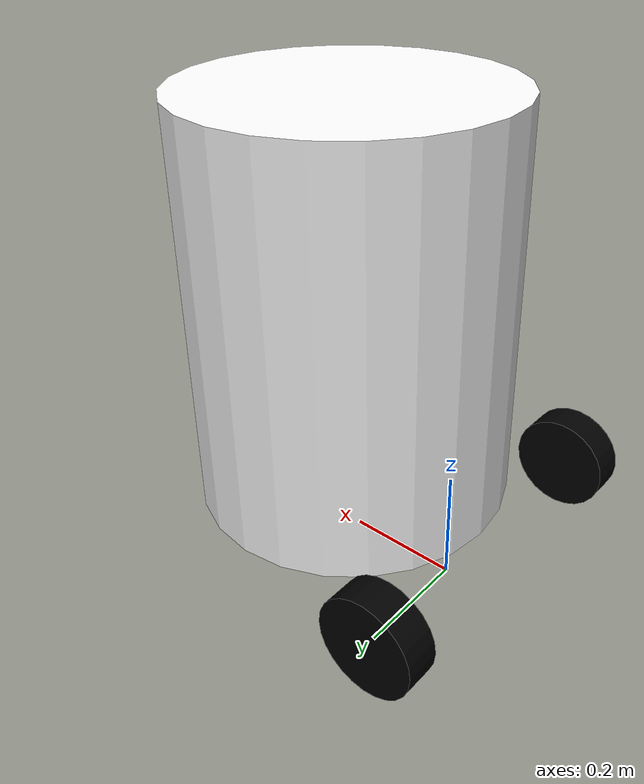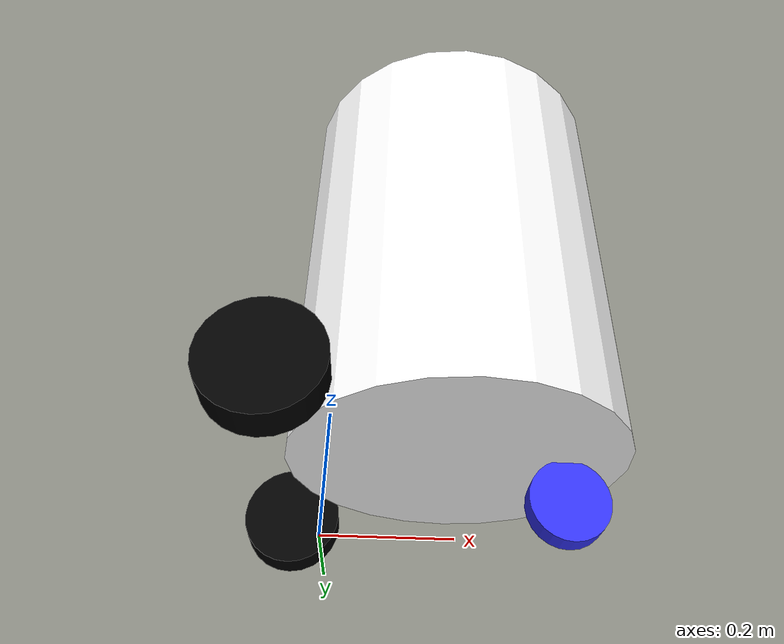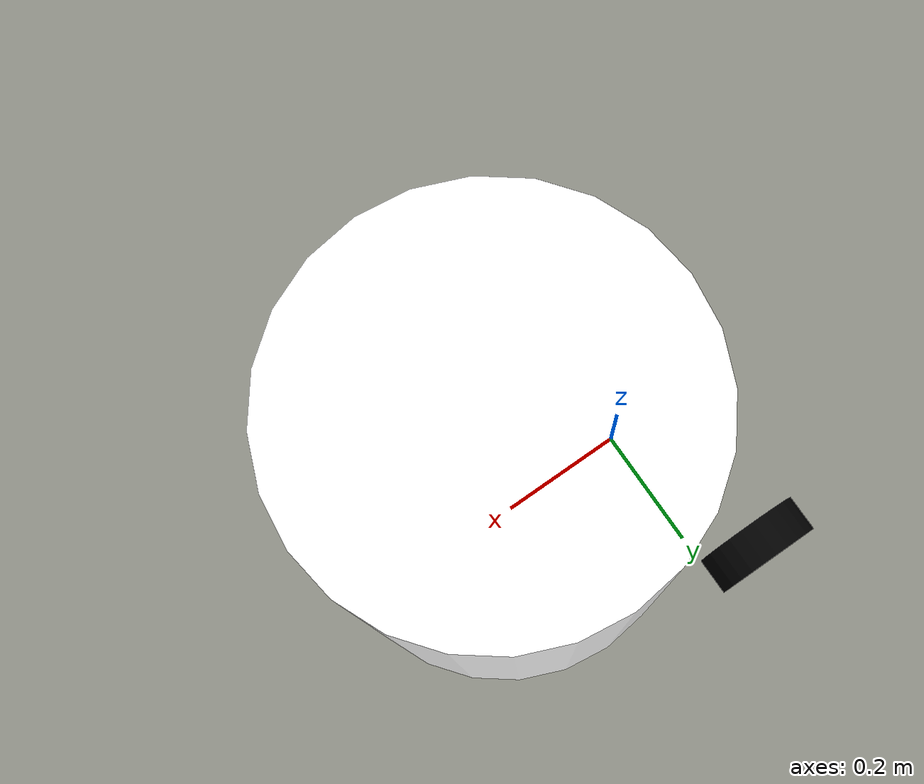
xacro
<?xml version="1.0"?>
<robot xmlns:xacro="http://www.ros.org/wiki/xacro">

    <xacro:include filename="inertial_macros.xacro" />

    <material name="white">
        <color rgba="1 1 1 1"/>
    </material>

    <material name="orange">
        <color rgba="1 0.3 0.1 1"/>
    </material>

    <material name="blue">
        <color rgba="0.2 0.2 1 1"/>
    </material>

    <material name="black">
        <color rgba="0 0 0 1"/>
    </material>

    <material name="red">
        <color rgba="1 0 0 1"/>
    </material>

<!-- ODOM LINK -->

    <link name="base_link">

    </link>

    <!-- BASE_FOOTPRINT LINK-->

    <joint name="base_footprint_joint" type="fixed">
        <parent link="base_link"/>
        <child link="base_footprint"/>
        <origin xyz="0 0 0" rpy="0 0 0"/>
    </joint>

    <link name="base_footprint">
    </link>

   <!--  CHASSIS LINK -->

    <joint name="chassis_joint" type="fixed">
    <parent link="base_link"/>
    <child link="chassis"/>
    <origin xyz="-0.07 0 0.06"/>
    </joint>

    <link name="chassis">
        <visual>
            <origin xyz="0.28 0 0.41" rpy="0 0 0"/>
            <geometry>
                <cylinder length="0.7" radius="0.275"/>
            </geometry>
            <material name="white"/>
        </visual>

        <collision>
            <origin xyz="0.28 0 0.41" rpy="0 0 0"/>
            <geometry>
                <cylinder length="0,7" radius="0,275"/>
            </geometry>
        </collision>

        <xacro:inertial_cylinder mass="0.1" length="0.7" radius="0.275">
            <origin xyz="0 0 0" rpy="0 0 0"/>
        </xacro:inertial_cylinder>
    </link>

    <gazebo reference="chassis">
        <material>Gazebo/White</material>
    </gazebo>

    <!-- LEFT WHEEL -->

    <joint name="joint0" type="continuous">
        <parent link="chassis"/>
        <child link="left_wheel"/>
        <origin xyz="0 0.28 0.06" rpy="${-pi/2} 0 0"/>
        <axis xyz="0 0 1"/>
    </joint>

    <link name="left_wheel">
        <visual>
            <geometry>
                <cylinder length="0.06" radius="0.085" />
            </geometry>
            <material name="black"/>
        </visual>
        <collision>
            <geometry>
                <cylinder length="0.06" radius="0.085" />
            </geometry>
        </collision>
        <xacro:inertial_cylinder mass="0.1" length="0.06" radius="0.085">
            <origin xyz="0 0 0" rpy="0 0 0"/>
        </xacro:inertial_cylinder>
    </link>

    <gazebo reference="left_wheel">
        <material>Gazebo/Black</material>
    </gazebo>

    <!-- RIGHT WHEEL -->

    <joint name="joint1" type="continuous">
        <parent link="chassis"/>
        <child link="right_wheel"/>
        <origin xyz="0 -0.28 0.06" rpy="${pi/2} 0 0"/>
        <axis xyz="0 0 -1"/>
    </joint>

    <link name="right_wheel">
        <visual>
            <geometry>
                <cylinder length="0.06" radius="0.085" />
            </geometry>
            <material name="black"/>
        </visual>
        <collision>
            <geometry>
                <cylinder length="0.06" radius="0.085" />
            </geometry>
        </collision>
        <xacro:inertial_cylinder mass="0.1" length="0.06" radius="0.085">
            <origin xyz="0 0 0" rpy="0 0 0"/>
        </xacro:inertial_cylinder>
    </link>

    <gazebo reference="right_wheel">
        <material>Gazebo/Black</material>
    </gazebo>

    <!-- CASTER WHEEL -->

    <joint name="caster_wheel_joint" type="fixed">
        <parent link="chassis"/>
        <child link="caster_wheel"/>
        <origin xyz="0.45 0 0" rpy="${pi/2} 0 0"/>
    </joint>

    <link name="caster_wheel">
        <visual>
            <geometry>
                <cylinder length="0.04" radius="0.065" />
            </geometry>
            <material name="blue"/>
        </visual>
        <collision>
            <geometry>
                <cylinder length="0.04" radius="0.065" />
            </geometry>
            <material name="blue"/>
        </collision>
        <xacro:inertial_cylinder mass="0.1" length="0.04" radius="0.065">
            <origin xyz="0 0 0" rpy="0 0 0"/>
        </xacro:inertial_cylinder>
    </link>

    <gazebo reference="caster_wheel">
        <material>Gazebo/Blue</material>
        <mu1 value="0.001"/>
        <mu2 value="0.001"/>
    </gazebo>

</robot>
